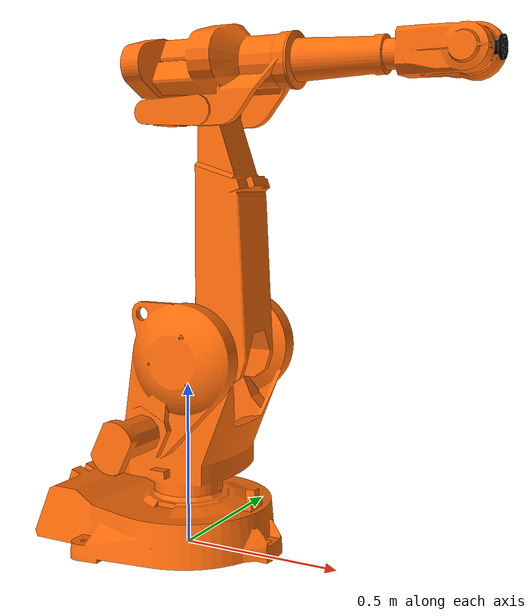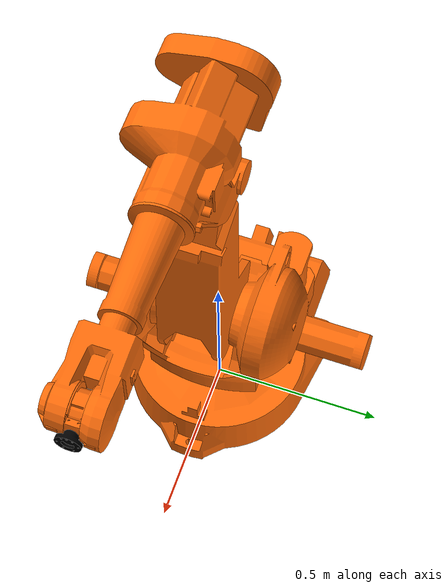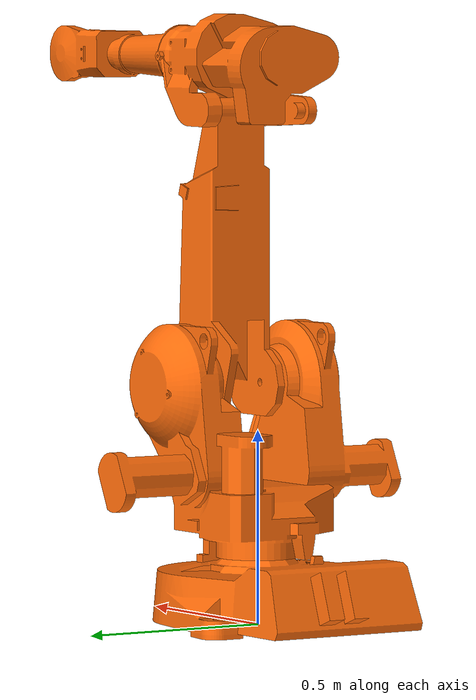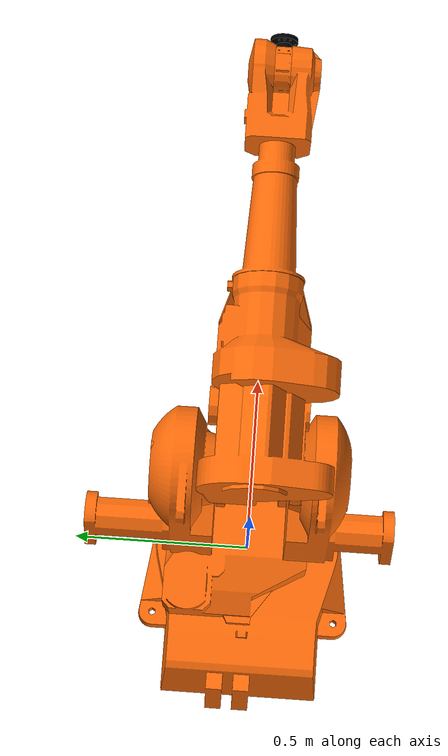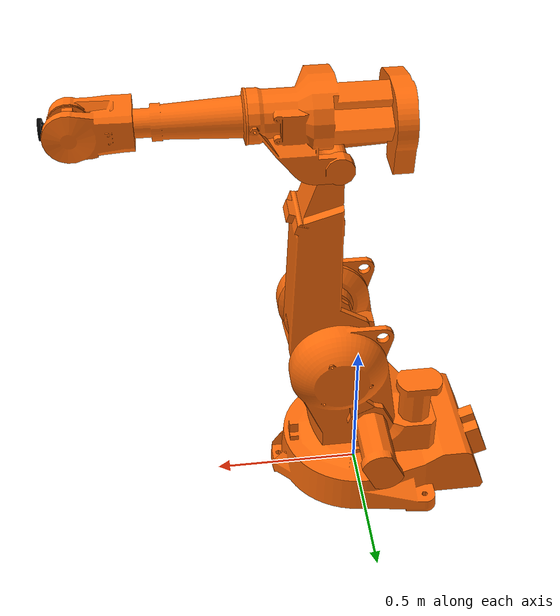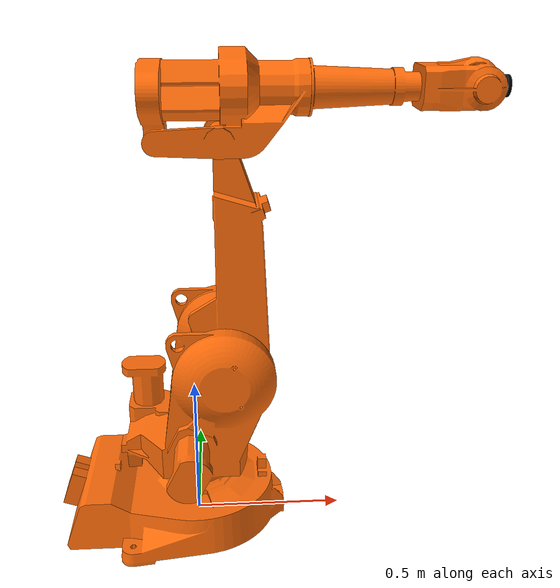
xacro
<?xml version="1.0" ?>

<robot name="abb_irb2400" xmlns:xacro="http://ros.org/wiki/xacro">
	<xacro:property name="pi" value="3.1415926535897931" />

	<xacro:include filename="$(find robot_gz)/urdf/irb2400.gazebo" />
	<xacro:include filename="$(find robot_gz)/urdf/materials.xacro" />
    <xacro:include filename="$(find robot_gz)/urdf/irb2400_macro.xacro"/>
	<xacro:include filename="$(find robot_gz)/urdf/irb2400_transmission.xacro"/>

    <xacro:abb_irb2400 prefix=""/>
    <xacro:abb_irb2400_transmission prefix=""/>

    <!-- Used for fixing robot to Gazebo world -->
    <link name="world"/>
    <joint name="fixed" type="fixed">
      <parent link="world"/>
      <child link="base_link"/>
    </joint>

</robot>

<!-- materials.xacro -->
<robot>
	<material name="black">
	  <color rgba="0.0 0.0 0.0 1.0"/>
	</material>

	<material name="blue">
	  <color rgba="0.0 0.0 0.8 1.0"/>
	</material>

	<material name="green">
	  <color rgba="0.0 0.8 0.0 1.0"/>
	</material>

	<material name="grey">
	  <color rgba="0.2 0.2 0.2 1.0"/>
	</material>

	<material name="orange">
	  <color rgba="${255/255} ${108/255} ${10/255} 1.0"/>
	</material>

	<material name="abb_orange">
	  <color rgba="1.0 0.43 0.0 1.0"/>
	</material>

	<material name="yellow">
	  <color rgba="0.0 1.0 1.0 1.0"/>
	</material>

	<material name="brown">
	  <color rgba="${222/255} ${207/255} ${195/255} 1.0"/>
	</material>

	<material name="red">
	  <color rgba="0.8 0.0 0.0 1.0"/>
	</material>

	<material name="white">
	  <color rgba="1.0 1.0 1.0 1.0"/>
	</material>
</robot>

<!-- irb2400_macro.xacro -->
<robot xmlns:xacro="http://ros.org/wiki/xacro">
	<xacro:macro name="abb_irb2400" params="prefix">
		<!-- link list -->
		<link name="${prefix}base_link">
			<visual>
				<origin xyz="0 0 0" rpy="0 0 0"/>
				<geometry>
					<mesh filename="package://abb_irb2400_support/meshes/irb2400/visual/base_link.dae"/>
				</geometry>
				<material name="orange"/>
			</visual>
			<collision>
				<origin xyz="0 0 0" rpy="0 0 0"/>
				<geometry>
					<mesh filename="package://abb_irb2400_support/meshes/irb2400/collision/base_link.stl"/>
				</geometry>
			</collision>
			<inertial>
				<origin xyz="0 0 0" rpy="0 0 0"/>
				<mass value="148"/>
				<inertia ixx="0.001" ixy="0" ixz="0" iyy="0.001" iyz="0" izz="0.001"/>
			</inertial>
		</link>
		<link name="${prefix}link_1">
			<visual>
				<origin xyz="0 0 0" rpy="0 0 0"/>
				<geometry>
					<mesh filename="package://abb_irb2400_support/meshes/irb2400/visual/link_1.dae"/>
				</geometry>
				<material name="orange"/>
			</visual>
			<collision>
				<origin rpy="0 0 0" xyz="0 0 0"/>
				<geometry>
					<mesh filename="package://abb_irb2400_support/meshes/irb2400/collision/link_1.stl"/>
				</geometry>
			</collision>
			<inertial>
				<origin rpy="0 0 0" xyz="0 0 0"/>
				<mass value="127"/>
				<inertia ixx="0.001" ixy="0" ixz="0" iyy="0.001" iyz="0" izz="0.001"/>
			</inertial>
		</link>
		<link name="${prefix}link_2">
			<visual>
				<origin xyz="0 0 0" rpy="0 0 0"/>
				<geometry>
					<mesh filename="package://abb_irb2400_support/meshes/irb2400/visual/link_2.dae"/>
				</geometry>
				<material name="orange"/>
			</visual>
			<collision>
				<origin xyz="0 0 0" rpy="0 0 0"/>
				<geometry>
					<mesh filename="package://abb_irb2400_support/meshes/irb2400/collision/link_2_whole.stl"/>
				</geometry>
			</collision>
			<inertial>
				<origin xyz="0 0 0" rpy="0 0 0"/>
				<mass value="44.8"/>
				<inertia ixx="0.001" ixy="0" ixz="0" iyy="0.001" iyz="0" izz="0.001"/>
			</inertial>
		</link>
		<link name="${prefix}link_3">
			<visual>
				<origin xyz="0 0 0" rpy="0 0 0"/>
				<geometry>
					<mesh filename="package://abb_irb2400_support/meshes/irb2400/visual/link_3.dae"/>
				</geometry>
				<material name="orange"/>
			</visual>
			<collision>
				<origin xyz="0 0 0" rpy="0 0 0"/>
				<geometry>
					<mesh filename="package://abb_irb2400_support/meshes/irb2400/collision/link_3.stl"/>
				</geometry>
			</collision>
			<inertial>
				<origin xyz="0 0 0" rpy="0 0 0"/>
				<mass value="41"/>
				<inertia ixx="0.001" ixy="0" ixz="0" iyy="0.001" iyz="0" izz="0.001"/>
			</inertial>
		</link>
		<link name="${prefix}link_4">
			<visual>
				<origin xyz="0 0 0" rpy="0 0 0"/>
				<geometry>
					<mesh filename="package://abb_irb2400_support/meshes/irb2400/visual/link_4.dae"/>
				</geometry>
				<material name="orange"/>
			</visual>
			<collision>
				<origin xyz="0 0 0" rpy="0 0 0"/>
				<geometry>
					<mesh filename="package://abb_irb2400_support/meshes/irb2400/collision/link_4.stl"/>
				</geometry>
			</collision>
			<inertial>
				<origin xyz="0 0 0" rpy="0 0 0"/>
				<mass value="17.9"/>
				<inertia ixx="0.001" ixy="0" ixz="0" iyy="0.001" iyz="0" izz="0.001"/>
			</inertial>
		</link>
		<link name="${prefix}link_5">
			<visual>
				<origin xyz="0 0 0" rpy="0 0 0"/>
				<geometry>
					<mesh filename="package://abb_irb2400_support/meshes/irb2400/visual/link_5.dae"/>
				</geometry>
				<material name="orange"/>
			</visual>
			<collision>
				<origin xyz="0 0 0" rpy="0 0 0"/>
				<geometry>
					<mesh filename="package://abb_irb2400_support/meshes/irb2400/visual/link_5.stl"/>
				</geometry>
			</collision>
			<inertial>
				<origin xyz="0 0 0" rpy="0 0 0"/>
				<mass value="1"/>
				<inertia ixx="0.001" ixy="0" ixz="0" iyy="0.001" iyz="0" izz="0.001"/>
			</inertial>
		</link>
		<link name="${prefix}link_6">
			<visual>
				<origin xyz="0 0 0" rpy="0 0 0"/>
				<geometry>
					<mesh filename="package://abb_irb2400_support/meshes/irb2400/visual/link_6.dae"/>
				</geometry>
				<material name="black"/>
			</visual>
			<collision>
				<origin xyz="0 0 0" rpy="0 0 0"/>
				<geometry>
					<mesh filename="package://abb_irb2400_support/meshes/irb2400/collision/link_6.stl"/>
				</geometry>
			</collision>
			<inertial>
				<origin xyz="0 0 0" rpy="0 0 0"/>
				<mass value="0.3"/>
				<inertia ixx="0.001" ixy="0" ixz="0" iyy="0.001" iyz="0" izz="0.001"/>
			</inertial>
		</link>
		<link name="${prefix}tool0"/>
		<!-- end of link list -->

		<!-- joint list -->
		<joint name="${prefix}joint_1" type="revolute">
		    <origin xyz="0 0 0" rpy="0 0 0"/>
		    <parent link="${prefix}base_link"/>
		    <child link="${prefix}link_1"/>
		    <axis xyz="0 0 1"/>
		    <limit lower="-3.1416" upper="3.1416" effort="100" velocity="2.618"/>
		    <dynamics damping="0.7"/>
		</joint>
		<joint name="${prefix}joint_2" type="revolute">
		    <origin xyz="0.1 0 0.615" rpy="0 0 0"/>
		    <parent link="${prefix}link_1"/>
		    <child link="${prefix}link_2"/>
		    <axis xyz="0 1 0"/>
		    <limit lower="-1.7453" upper="1.9199" effort="100" velocity="2.618"/>
		    <dynamics damping="0.7"/>
		</joint>
		<joint name="${prefix}joint_3" type="revolute">
		    <origin xyz="0 0 0.705" rpy="0 0 0"/>
		    <parent link="${prefix}link_2"/>
		    <child link="${prefix}link_3"/>
		    <axis xyz="0 1 0"/>
		    <limit lower="-1.0472" upper="1.1345" effort="100" velocity="2.618"/>
		    <dynamics damping="0.7"/>
		</joint>
		<joint name="${prefix}joint_4" type="revolute">
		    <origin xyz="0.258 0 0.135" rpy="0 0 0"/>
		    <parent link="${prefix}link_3"/>
		    <child link="${prefix}link_4"/>
		    <axis xyz="1 0 0"/>
		    <limit lower="-3.49" upper="3.49" effort="100" velocity="6.2832"/>
		    <dynamics damping="0.7"/>
		</joint>
		<joint name="${prefix}joint_5" type="revolute">
		    <origin xyz="0.497 0 0" rpy="0 0 0"/>
		    <parent link="${prefix}link_4"/>
		    <child link="${prefix}link_5"/>
		    <axis xyz="0 1 0"/>
		    <limit lower="-2.0944" upper="2.0944" effort="100" velocity="6.2832"/>
		    <dynamics damping="0.7"/>
		</joint>
		<joint name="${prefix}joint_6" type="revolute">
		    <origin xyz="0.085 0 0" rpy="0 0 0"/>
		    <parent link="${prefix}link_5"/>
		    <child link="${prefix}link_6"/>
		    <axis xyz="1 0 0"/>
		    <limit lower="-6.9813" upper="6.9813" effort="100" velocity="7.854"/>
		    <dynamics damping="0.7"/>
		</joint>
		<joint name="${prefix}joint_6-tool0" type="fixed">
		    <parent link="${prefix}link_6"/>
		    <child link="${prefix}tool0"/>
		    <origin xyz="0 0 0" rpy="0 0 0"/>
		</joint>
		<!-- end of joint list -->
	</xacro:macro>
</robot>
